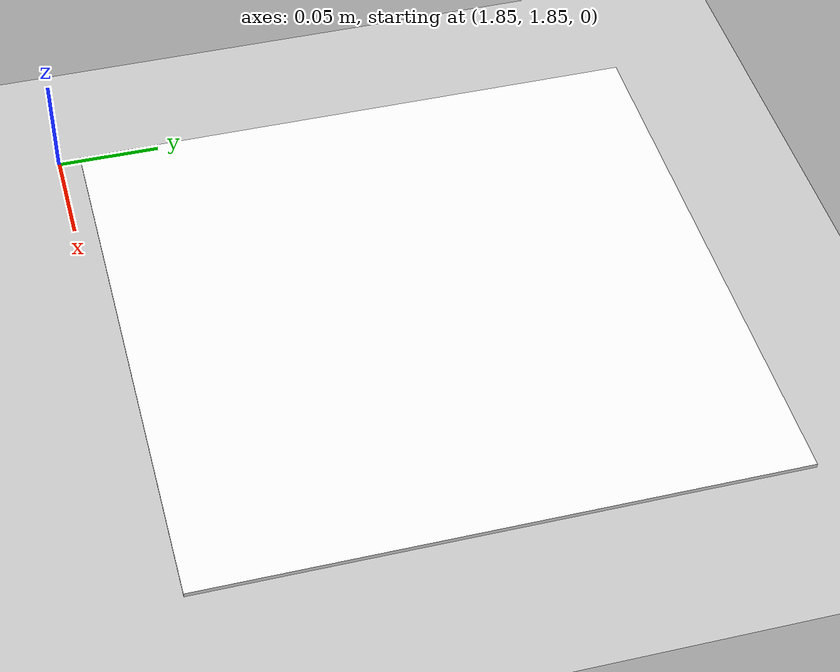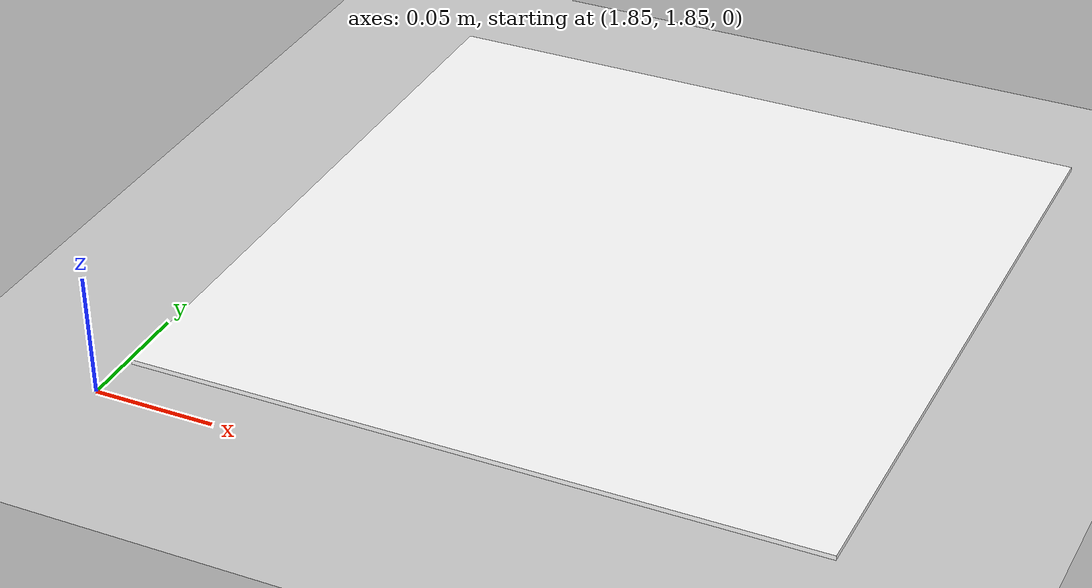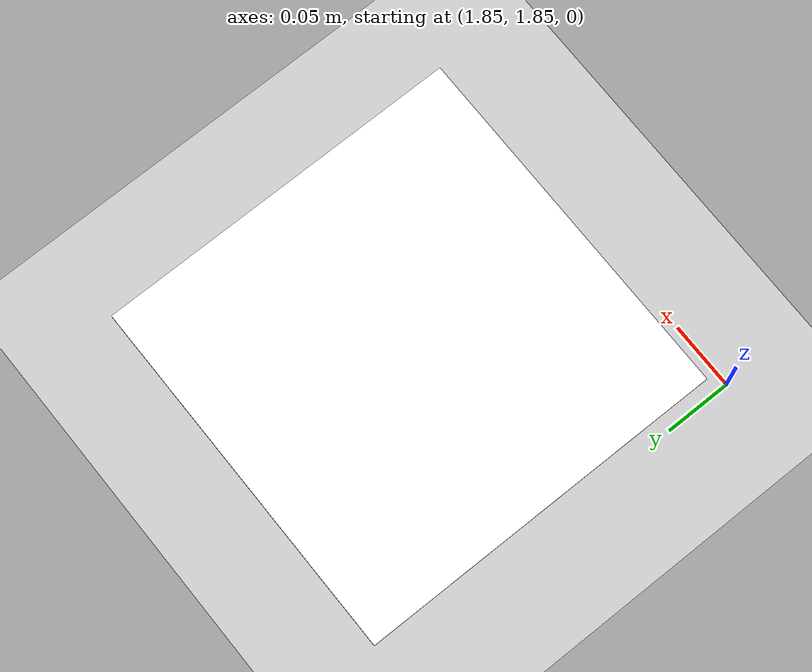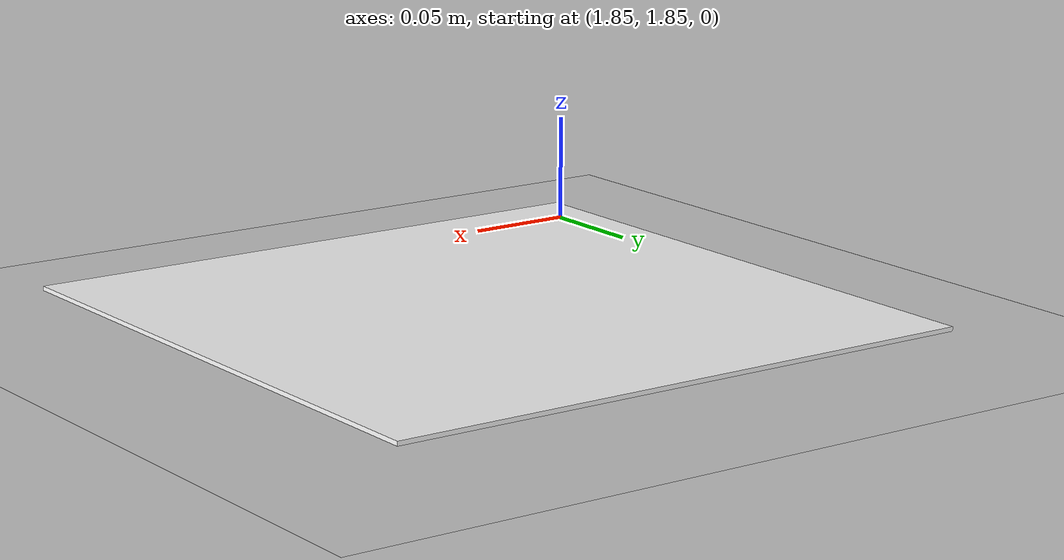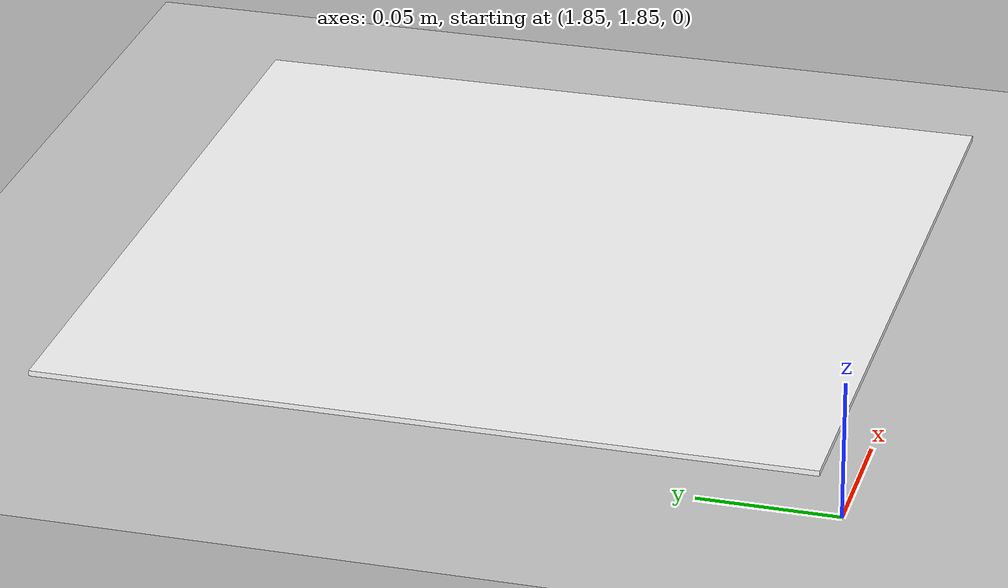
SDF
<?xml version="1.0" ?>
<sdf version="1.6">
  <world name="aruco_landing_pad">
    <!-- A global light source -->
    <include>
      <uri>model://sun</uri>
    </include>
    <!-- A ground plane -->
    <include>
      <uri>model://ground_plane</uri>
    </include>
    <model name='aruco_landing_pad'>
      <include>
        <uri>model://aruco_landing_pad</uri>
	      <pose> 2 2 0.01 0 0 -1.5707963 </pose>
      </include>
    </model>
    <physics name='default_physics' default='0' type='ode'>
      <gravity>0 0 -9.8066</gravity>
      <ode>
        <solver>
          <type>quick</type>
          <iters>150</iters>
          <sor>1.3</sor>
          <use_dynamic_moi_rescaling>0</use_dynamic_moi_rescaling>
        </solver>
        <constraints>
          <cfm>0.00001</cfm>
          <erp>0.2</erp>
          <contact_max_correcting_vel>1000</contact_max_correcting_vel>
          <contact_surface_layer>0.01</contact_surface_layer>
        </constraints>
      </ode>
      <max_step_size>0.004</max_step_size>
      <real_time_factor>1000.0</real_time_factor>
      <real_time_update_rate>250</real_time_update_rate>
      <magnetic_field>6.0e-6 2.3e-5 -4.2e-5</magnetic_field>
    </physics>
  </world>
</sdf>

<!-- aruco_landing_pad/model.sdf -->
<sdf version='1.9'>
  <model name='aruco_landing_pad'>
    <static>true</static>
    <link name='pad_link'>
      <visual name='pad_visual'>
        <geometry>
          <box><size>0.28 0.28 0.002</size></box>
        </geometry>
        <material>
          <ambient>1 1 1 1</ambient>
          <diffuse>1 1 1 1</diffuse>
          <specular>0.1 0.1 0.1 1</specular>
          <pbr>
            <metal>
              <albedo_map>materials/textures/aruco_5x5_50_id0.png</albedo_map>
              <metalness>0.0</metalness>
              <roughness>1.0</roughness>
            </metal>
          </pbr>
        </material>
      </visual>
      <collision name='pad_collision'>
        <geometry>
          <box><size>0.28 0.28 0.002</size></box>
        </geometry>
      </collision>
    </link>
  </model>
</sdf>
